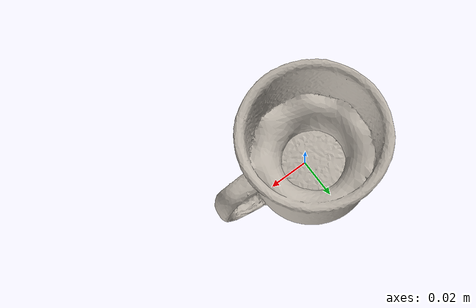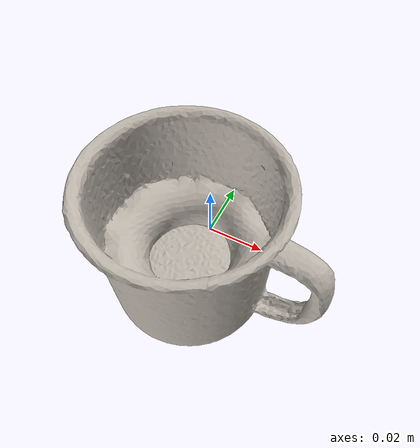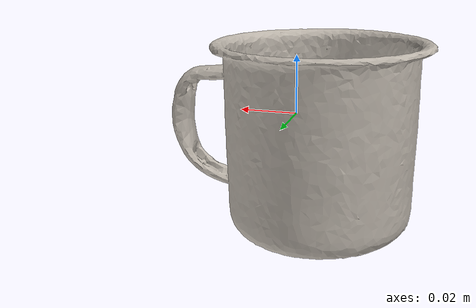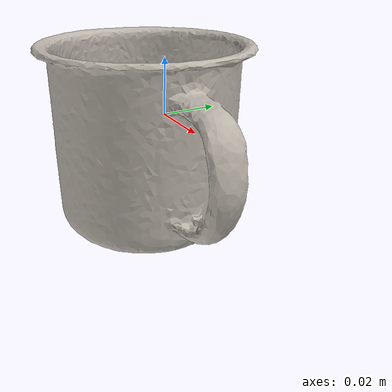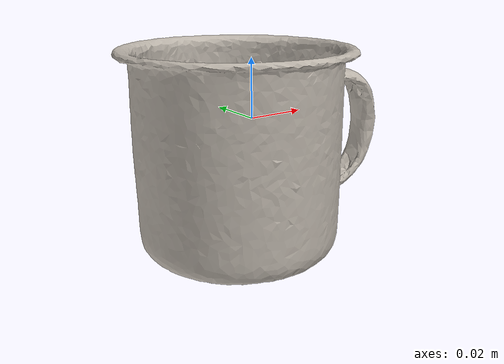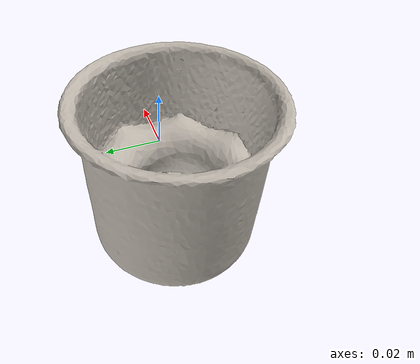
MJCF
<mujoco model="bread">
  <asset>
    <mesh file="nontextured.stl" name="obj_mesh" scale="0.8 0.8 0.8"/>
    <texture file="../../../../../textures/bread.png" type="2d" name="tex-bread" />
    <material name="bread" reflectance="0.7" texrepeat="15 15" texture="tex-bread" texuniform="true"/>
  </asset>
  <worldbody>
    <body>
      <body name="collision">
        <geom pos="0.008857000000000004 -0.0173395 -0.040119499999999995" mesh="obj_mesh" type="mesh" solimp="0.998 0.998 0.001" solref="0.001 1" density="50" friction="0.95 0.3 0.1"  material="bread" group="1" condim="4"/>
      </body>
      <body name="visual">
        <geom pos="0.008857000000000004 -0.0173395 -0.040119499999999995" mesh="obj_mesh" type="mesh" material="bread"  conaffinity="0" contype="0"  group="0" mass="0.0001"/>
        <geom pos="0.008857000000000004 -0.0173395 -0.040119499999999995" mesh="obj_mesh" type="mesh" material="bread"  conaffinity="0" contype="0"  group="1" mass="0.0001"/>
      </body>
      <site rgba="0 0 0 0" size="0.005" pos="0 0 -0.0406515" name="bottom_site"/>
      <site rgba="0 0 0 0" size="0.005" pos="0 0 0.0406515" name="top_site"/>
      <site rgba="0 0 0 0" size="0.005" pos="0.058492 0.0465655 0.0406515" name="horizontal_radius_site"/>
    </body>
  </worldbody>
</mujoco>
